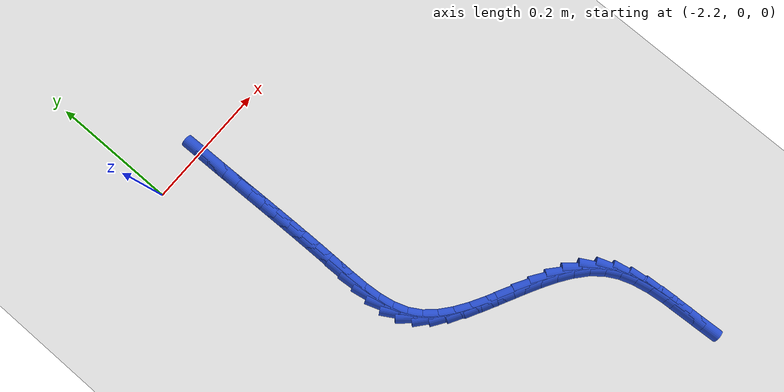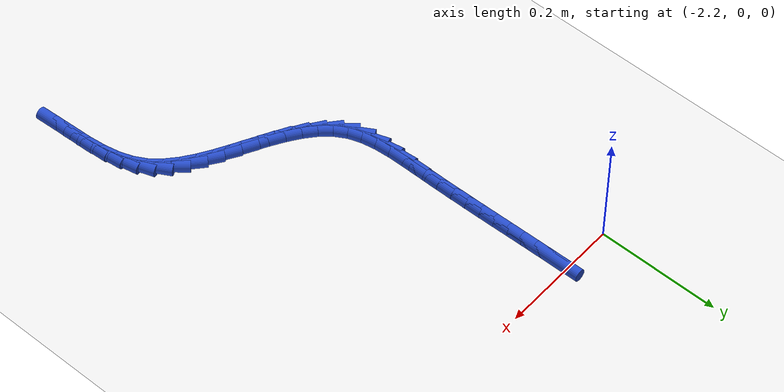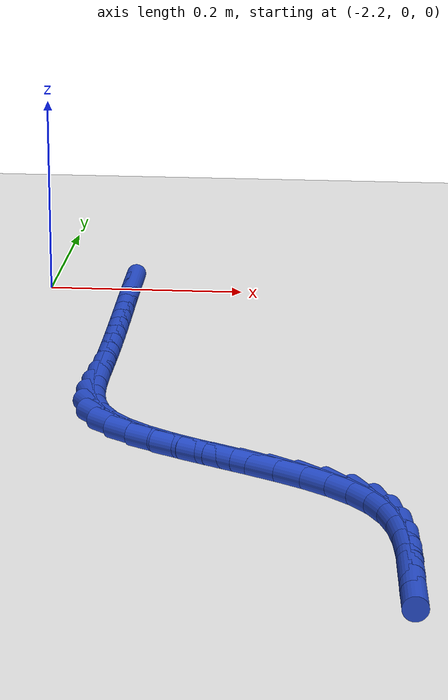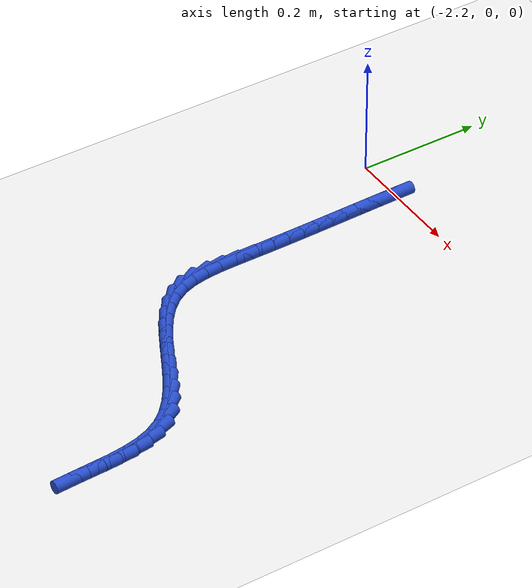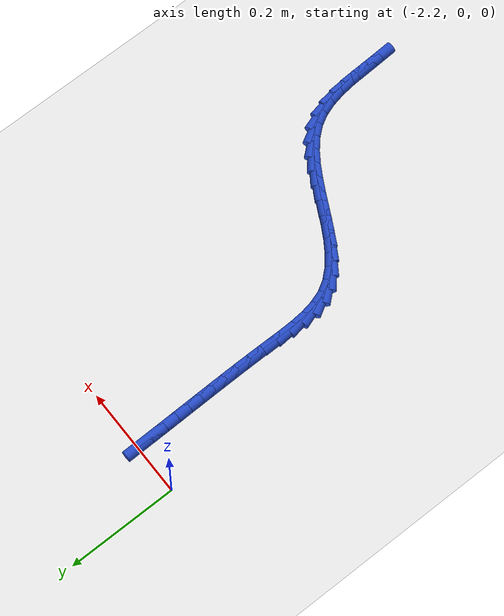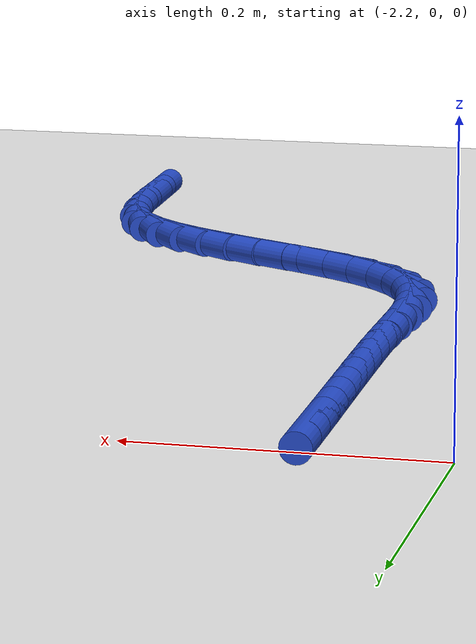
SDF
<sdf version="1.6">
 <world name="default">
  <model name="ground_plane">
   <static>1</static>
   <link name="link">
    <collision name="collision">
     <geometry><plane><normal>0 0 1</normal><size>100 100</size></plane></geometry>
     <surface><friction><ode><mu>100</mu><mu2>50</mu2></ode></friction></surface>
    </collision>
    <visual name="visual">
     <cast_shadows>0</cast_shadows>
     <geometry><plane><normal>0 0 1</normal><size>100 100</size></plane></geometry>
     <material>
      <script><uri>file://media/materials/scripts/gazebo.material</uri><name>Gazebo/WhiteGlow</name></script>
     </material>
    </visual>
   </link>
  </model>
  <model name="line">
   <link name="link_135">
    <pose>-2.112479204436488 -0.014394463000758546 0.01 0 1.57 -1.555806776019827</pose>
    <collision name="collision">
     <geometry><cylinder><radius>0.01</radius><length>0.08</length></cylinder></geometry>
    </collision>
    <visual name="visual">
     <material>
      <script><name>Gazebo/Blue</name><uri>file://media/materials/scripts/gazebo.material</uri></script>
     </material>
     <geometry><cylinder><radius>0.01</radius><length>0.08</length></cylinder></geometry>
    </visual>
   </link>
   <link name="link_136">
    <pose>-2.1121064998089545 -0.03925689675824686 0.01 0 1.57 -1.5530319824649619</pose>
    <collision name="collision">
     <geometry><cylinder><radius>0.01</radius><length>0.08</length></cylinder></geometry>
    </collision>
    <visual name="visual">
     <material>
      <script><name>Gazebo/Blue</name><uri>file://media/materials/scripts/gazebo.material</uri></script>
     </material>
     <geometry><cylinder><radius>0.01</radius><length>0.08</length></cylinder></geometry>
    </visual>
   </link>
   <link name="link_137">
    <pose>-2.1116623902099394 -0.06425432270374548 0.01 0 1.57 -1.5514512447827553</pose>
    <collision name="collision">
     <geometry><cylinder><radius>0.01</radius><length>0.08</length></cylinder></geometry>
    </collision>
    <visual name="visual">
     <material>
      <script><name>Gazebo/Blue</name><uri>file://media/materials/scripts/gazebo.material</uri></script>
     </material>
     <geometry><cylinder><radius>0.01</radius><length>0.08</length></cylinder></geometry>
    </visual>
   </link>
   <link name="link_138">
    <pose>-2.111175878655933 -0.08940029327948934 0.01 0 1.57 -1.5510458861019278</pose>
    <collision name="collision">
     <geometry><cylinder><radius>0.01</radius><length>0.08</length></cylinder></geometry>
    </collision>
    <visual name="visual">
     <material>
      <script><name>Gazebo/Blue</name><uri>file://media/materials/scripts/gazebo.material</uri></script>
     </material>
     <geometry><cylinder><radius>0.01</radius><length>0.08</length></cylinder></geometry>
    </visual>
   </link>
   <link name="link_139">
    <pose>-2.1106759681634233 -0.11470836092771046 0.01 0 1.57 -1.5517940706492408</pose>
    <collision name="collision">
     <geometry><cylinder><radius>0.01</radius><length>0.08</length></cylinder></geometry>
    </collision>
    <visual name="visual">
     <material>
      <script><name>Gazebo/Blue</name><uri>file://media/materials/scripts/gazebo.material</uri></script>
     </material>
     <geometry><cylinder><radius>0.01</radius><length>0.08</length></cylinder></geometry>
    </visual>
   </link>
   <link name="link_140">
    <pose>-2.1101916617489 -0.14019207809064307 0.01 0 1.57 -1.5536710309619362</pose>
    <collision name="collision">
     <geometry><cylinder><radius>0.01</radius><length>0.08</length></cylinder></geometry>
    </collision>
    <visual name="visual">
     <material>
      <script><name>Gazebo/Blue</name><uri>file://media/materials/scripts/gazebo.material</uri></script>
     </material>
     <geometry><cylinder><radius>0.01</radius><length>0.08</length></cylinder></geometry>
    </visual>
   </link>
   <link name="link_141">
    <pose>-2.1097519624288523 -0.16586499721052145 0.01 0 1.57 -1.5566492637037348</pose>
    <collision name="collision">
     <geometry><cylinder><radius>0.01</radius><length>0.08</length></cylinder></geometry>
    </collision>
    <visual name="visual">
     <material>
      <script><name>Gazebo/Blue</name><uri>file://media/materials/scripts/gazebo.material</uri></script>
     </material>
     <geometry><cylinder><radius>0.01</radius><length>0.08</length></cylinder></geometry>
    </visual>
   </link>
   <link name="link_142">
    <pose>-2.1093858732197686 -0.1917406707295775 0.01 0 1.57 -1.5606986982105437</pose>
    <collision name="collision">
     <geometry><cylinder><radius>0.01</radius><length>0.08</length></cylinder></geometry>
    </collision>
    <visual name="visual">
     <material>
      <script><name>Gazebo/Blue</name><uri>file://media/materials/scripts/gazebo.material</uri></script>
     </material>
     <geometry><cylinder><radius>0.01</radius><length>0.08</length></cylinder></geometry>
    </visual>
   </link>
   <link name="link_143">
    <pose>-2.109122397138139 -0.21783265109004635 0.01 0 1.57 -1.5657868427898634</pose>
    <collision name="collision">
     <geometry><cylinder><radius>0.01</radius><length>0.08</length></cylinder></geometry>
    </collision>
    <visual name="visual">
     <material>
      <script><name>Gazebo/Blue</name><uri>file://media/materials/scripts/gazebo.material</uri></script>
     </material>
     <geometry><cylinder><radius>0.01</radius><length>0.08</length></cylinder></geometry>
    </visual>
   </link>
   <link name="link_144">
    <pose>-2.1089905372004516 -0.24415449073415985 0.01 0 1.57 1.5697137392029779</pose>
    <collision name="collision">
     <geometry><cylinder><radius>0.01</radius><length>0.08</length></cylinder></geometry>
    </collision>
    <visual name="visual">
     <material>
      <script><name>Gazebo/Blue</name><uri>file://media/materials/scripts/gazebo.material</uri></script>
     </material>
     <geometry><cylinder><radius>0.01</radius><length>0.08</length></cylinder></geometry>
    </visual>
   </link>
   <link name="link_145">
    <pose>-2.109019296423196 -0.27071974210415306 0.01 0 1.57 1.5663639410796766</pose>
    <collision name="collision">
     <geometry><cylinder><radius>0.01</radius><length>0.08</length></cylinder></geometry>
    </collision>
    <visual name="visual">
     <material>
      <script><name>Gazebo/Blue</name><uri>file://media/materials/scripts/gazebo.material</uri></script>
     </material>
     <geometry><cylinder><radius>0.01</radius><length>0.08</length></cylinder></geometry>
    </visual>
   </link>
   <link name="link_146">
    <pose>-2.1091379058297877 -0.29747928819871017 0.01 0 1.57 -1.553073138595205</pose>
    <collision name="collision">
     <geometry><cylinder><radius>0.01</radius><length>0.08</length></cylinder></geometry>
    </collision>
    <visual name="visual">
     <material>
      <script><name>Gazebo/Blue</name><uri>file://media/materials/scripts/gazebo.material</uri></script>
     </material>
     <geometry><cylinder><radius>0.01</radius><length>0.08</length></cylinder></geometry>
    </visual>
   </link>
   <link name="link_147">
    <pose>-2.1086677855197156 -0.32400222980278076 0.01 0 1.57 -1.4944697860538099</pose>
    <collision name="collision">
     <geometry><cylinder><radius>0.01</radius><length>0.08</length></cylinder></geometry>
    </collision>
    <visual name="visual">
     <material>
      <script><name>Gazebo/Blue</name><uri>file://media/materials/scripts/gazebo.material</uri></script>
     </material>
     <geometry><cylinder><radius>0.01</radius><length>0.08</length></cylinder></geometry>
    </visual>
   </link>
   <link name="link_148">
    <pose>-2.10670148232055 -0.3497139063094385 0.01 0 1.57 -1.3930312077304834</pose>
    <collision name="collision">
     <geometry><cylinder><radius>0.01</radius><length>0.08</length></cylinder></geometry>
    </collision>
    <visual name="visual">
     <material>
      <script><name>Gazebo/Blue</name><uri>file://media/materials/scripts/gazebo.material</uri></script>
     </material>
     <geometry><cylinder><radius>0.01</radius><length>0.08</length></cylinder></geometry>
    </visual>
   </link>
   <link name="link_149">
    <pose>-2.1023311265170577 -0.37403939547014425 0.01 0 1.57 -1.2399192989657124</pose>
    <collision name="collision">
     <geometry><cylinder><radius>0.01</radius><length>0.08</length></cylinder></geometry>
    </collision>
    <visual name="visual">
     <material>
      <script><name>Gazebo/Blue</name><uri>file://media/materials/scripts/gazebo.material</uri></script>
     </material>
     <geometry><cylinder><radius>0.01</radius><length>0.08</length></cylinder></geometry>
    </visual>
   </link>
   <link name="link_150">
    <pose>-2.094648848394011 -0.3964037750363562 0.01 0 1.57 -1.0367405788909891</pose>
    <collision name="collision">
     <geometry><cylinder><radius>0.01</radius><length>0.08</length></cylinder></geometry>
    </collision>
    <visual name="visual">
     <material>
      <script><name>Gazebo/Blue</name><uri>file://media/materials/scripts/gazebo.material</uri></script>
     </material>
     <geometry><cylinder><radius>0.01</radius><length>0.08</length></cylinder></geometry>
    </visual>
   </link>
   <link name="link_151">
    <pose>-2.0828752619013406 -0.41631250427968575 0.01 0 1.57 -0.8440968175184259</pose>
    <collision name="collision">
     <geometry><cylinder><radius>0.01</radius><length>0.08</length></cylinder></geometry>
    </collision>
    <visual name="visual">
     <material>
      <script><name>Gazebo/Blue</name><uri>file://media/materials/scripts/gazebo.material</uri></script>
     </material>
     <geometry><cylinder><radius>0.01</radius><length>0.08</length></cylinder></geometry>
    </visual>
   </link>
   <link name="link_152">
    <pose>-2.0672387702647184 -0.4339015322221183 0.01 0 1.57 -0.6959891701992476</pose>
    <collision name="collision">
     <geometry><cylinder><radius>0.01</radius><length>0.08</length></cylinder></geometry>
    </collision>
    <visual name="visual">
     <material>
      <script><name>Gazebo/Blue</name><uri>file://media/materials/scripts/gazebo.material</uri></script>
     </material>
     <geometry><cylinder><radius>0.01</radius><length>0.08</length></cylinder></geometry>
    </visual>
   </link>
   <link name="link_153">
    <pose>-2.0484433005820626 -0.44960430353748443 0.01 0 1.57 -0.5908179483350606</pose>
    <collision name="collision">
     <geometry><cylinder><radius>0.01</radius><length>0.08</length></cylinder></geometry>
    </collision>
    <visual name="visual">
     <material>
      <script><name>Gazebo/Blue</name><uri>file://media/materials/scripts/gazebo.material</uri></script>
     </material>
     <geometry><cylinder><radius>0.01</radius><length>0.08</length></cylinder></geometry>
    </visual>
   </link>
   <link name="link_154">
    <pose>-2.027195583717887 -0.4638560169826814 0.01 0 1.57 -0.5223160901710553</pose>
    <collision name="collision">
     <geometry><cylinder><radius>0.01</radius><length>0.08</length></cylinder></geometry>
    </collision>
    <visual name="visual">
     <material>
      <script><name>Gazebo/Blue</name><uri>file://media/materials/scripts/gazebo.material</uri></script>
     </material>
     <geometry><cylinder><radius>0.01</radius><length>0.08</length></cylinder></geometry>
    </visual>
   </link>
   <link name="link_155">
    <pose>-2.004202350536709 -0.47709187131460473 0.01 0 1.57 -0.48469827873843935</pose>
    <collision name="collision">
     <geometry><cylinder><radius>0.01</radius><length>0.08</length></cylinder></geometry>
    </collision>
    <visual name="visual">
     <material>
      <script><name>Gazebo/Blue</name><uri>file://media/materials/scripts/gazebo.material</uri></script>
     </material>
     <geometry><cylinder><radius>0.01</radius><length>0.08</length></cylinder></geometry>
    </visual>
   </link>
   <link name="link_156">
    <pose>-1.9801703319030395 -0.4897470652901515 0.01 0 1.57 -0.4743495882618583</pose>
    <collision name="collision">
     <geometry><cylinder><radius>0.01</radius><length>0.08</length></cylinder></geometry>
    </collision>
    <visual name="visual">
     <material>
      <script><name>Gazebo/Blue</name><uri>file://media/materials/scripts/gazebo.material</uri></script>
     </material>
     <geometry><cylinder><radius>0.01</radius><length>0.08</length></cylinder></geometry>
    </visual>
   </link>
   <link name="link_157">
    <pose>-1.9558062586813945 -0.5022567976662171 0.01 0 1.57 -0.49012362079271315</pose>
    <collision name="collision">
     <geometry><cylinder><radius>0.01</radius><length>0.08</length></cylinder></geometry>
    </collision>
    <visual name="visual">
     <material>
      <script><name>Gazebo/Blue</name><uri>file://media/materials/scripts/gazebo.material</uri></script>
     </material>
     <geometry><cylinder><radius>0.01</radius><length>0.08</length></cylinder></geometry>
    </visual>
   </link>
   <link name="link_158">
    <pose>-1.931816861736288 -0.5150562671996988 0.01 0 1.57 -0.5333155021451949</pose>
    <collision name="collision">
     <geometry><cylinder><radius>0.01</radius><length>0.08</length></cylinder></geometry>
    </collision>
    <visual name="visual">
     <material>
      <script><name>Gazebo/Blue</name><uri>file://media/materials/scripts/gazebo.material</uri></script>
     </material>
     <geometry><cylinder><radius>0.01</radius><length>0.08</length></cylinder></geometry>
    </visual>
   </link>
   <link name="link_159">
    <pose>-1.9089088719322362 -0.5285806726474919 0.01 0 1.57 -0.6075616689093143</pose>
    <collision name="collision">
     <geometry><cylinder><radius>0.01</radius><length>0.08</length></cylinder></geometry>
    </collision>
    <visual name="visual">
     <material>
      <script><name>Gazebo/Blue</name><uri>file://media/materials/scripts/gazebo.material</uri></script>
     </material>
     <geometry><cylinder><radius>0.01</radius><length>0.08</length></cylinder></geometry>
    </visual>
   </link>
   <link name="link_160">
    <pose>-1.8877890201337513 -0.5432652127664932 0.01 0 1.57 -0.7183132189786205</pose>
    <collision name="collision">
     <geometry><cylinder><radius>0.01</radius><length>0.08</length></cylinder></geometry>
    </collision>
    <visual name="visual">
     <material>
      <script><name>Gazebo/Blue</name><uri>file://media/materials/scripts/gazebo.material</uri></script>
     </material>
     <geometry><cylinder><radius>0.01</radius><length>0.08</length></cylinder></geometry>
    </visual>
   </link>
   <link name="link_161">
    <pose>-1.869164037205349 -0.5595450863135996 0.01 0 1.57 -0.8707726471685424</pose>
    <collision name="collision">
     <geometry><cylinder><radius>0.01</radius><length>0.08</length></cylinder></geometry>
    </collision>
    <visual name="visual">
     <material>
      <script><name>Gazebo/Blue</name><uri>file://media/materials/scripts/gazebo.material</uri></script>
     </material>
     <geometry><cylinder><radius>0.01</radius><length>0.08</length></cylinder></geometry>
    </visual>
   </link>
   <link name="link_162">
    <pose>-1.8537406540115438 -0.5778554920457061 0.01 0 1.57 -1.0616253053092972</pose>
    <collision name="collision">
     <geometry><cylinder><radius>0.01</radius><length>0.08</length></cylinder></geometry>
    </collision>
    <visual name="visual">
     <material>
      <script><name>Gazebo/Blue</name><uri>file://media/materials/scripts/gazebo.material</uri></script>
     </material>
     <geometry><cylinder><radius>0.01</radius><length>0.08</length></cylinder></geometry>
    </visual>
   </link>
   <link name="link_163">
    <pose>-1.8421640180798027 -0.5985920853027104 0.01 0 1.57 -1.23978957922943</pose>
    <collision name="collision">
     <geometry><cylinder><radius>0.01</radius><length>0.08</length></cylinder></geometry>
    </collision>
    <visual name="visual">
     <material>
      <script><name>Gazebo/Blue</name><uri>file://media/materials/scripts/gazebo.material</uri></script>
     </material>
     <geometry><cylinder><radius>0.01</radius><length>0.08</length></cylinder></geometry>
    </visual>
   </link>
   <link name="link_164">
    <pose>-1.8342509409582335 -0.6216186367196697 0.01 0 1.57 -1.3708443035260398</pose>
    <collision name="collision">
     <geometry><cylinder><radius>0.01</radius><length>0.08</length></cylinder></geometry>
    </collision>
    <visual name="visual">
     <material>
      <script><name>Gazebo/Blue</name><uri>file://media/materials/scripts/gazebo.material</uri></script>
     </material>
     <geometry><cylinder><radius>0.01</radius><length>0.08</length></cylinder></geometry>
    </visual>
   </link>
   <link name="link_165">
    <pose>-1.8292250894053312 -0.6464180513780419 0.01 0 1.57 -1.4588592365857982</pose>
    <collision name="collision">
     <geometry><cylinder><radius>0.01</radius><length>0.08</length></cylinder></geometry>
    </collision>
    <visual name="visual">
     <material>
      <script><name>Gazebo/Blue</name><uri>file://media/materials/scripts/gazebo.material</uri></script>
     </material>
     <geometry><cylinder><radius>0.01</radius><length>0.08</length></cylinder></geometry>
    </visual>
   </link>
   <link name="link_166">
    <pose>-1.8262972360120329 -0.6724649548559422 0.01 0 1.57 -1.5103864665150983</pose>
    <collision name="collision">
     <geometry><cylinder><radius>0.01</radius><length>0.08</length></cylinder></geometry>
    </collision>
    <visual name="visual">
     <material>
      <script><name>Gazebo/Blue</name><uri>file://media/materials/scripts/gazebo.material</uri></script>
     </material>
     <geometry><cylinder><radius>0.01</radius><length>0.08</length></cylinder></geometry>
    </visual>
   </link>
   <link name="link_167">
    <pose>-1.8246781533692704 -0.6992339727314878 0.01 0 1.57 -1.530043512134326</pose>
    <collision name="collision">
     <geometry><cylinder><radius>0.01</radius><length>0.08</length></cylinder></geometry>
    </collision>
    <visual name="visual">
     <material>
      <script><name>Gazebo/Blue</name><uri>file://media/materials/scripts/gazebo.material</uri></script>
     </material>
     <geometry><cylinder><radius>0.01</radius><length>0.08</length></cylinder></geometry>
    </visual>
   </link>
   <link name="link_168">
    <pose>-1.823578614067979 -0.7261997305827937 0.01 0 1.57 -1.5194387041008766</pose>
    <collision name="collision">
     <geometry><cylinder><radius>0.01</radius><length>0.08</length></cylinder></geometry>
    </collision>
    <visual name="visual">
     <material>
      <script><name>Gazebo/Blue</name><uri>file://media/materials/scripts/gazebo.material</uri></script>
     </material>
     <geometry><cylinder><radius>0.01</radius><length>0.08</length></cylinder></geometry>
    </visual>
   </link>
  </model>
 </world>
</sdf>
